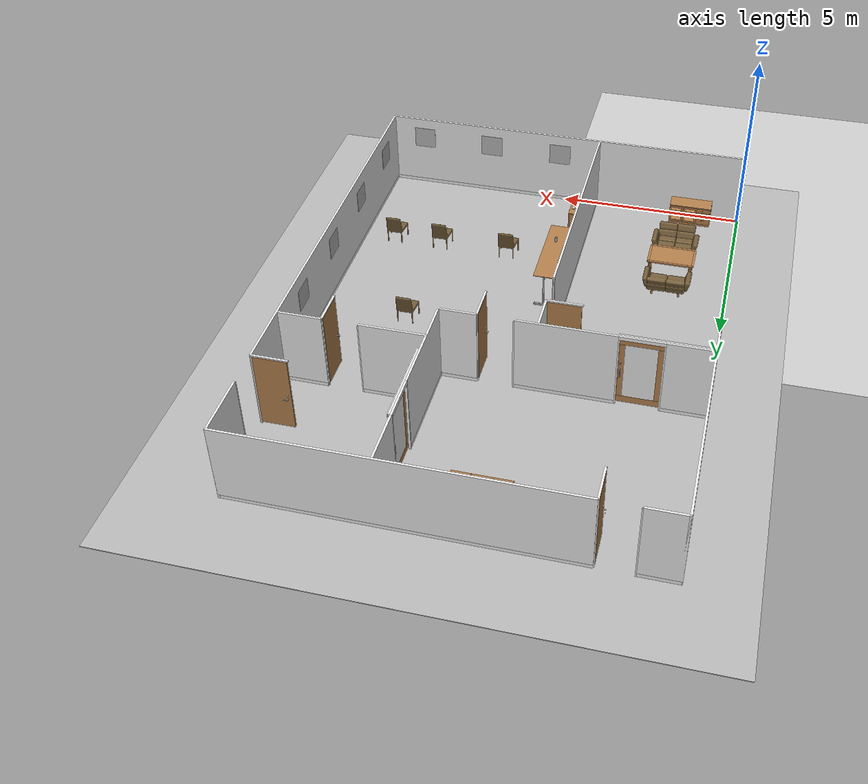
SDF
<sdf version="1.4">
 <world name="default">
  <scene>
   <ambient>0.5 0.5 0.5 1</ambient>
   <shadows>0</shadows>
   <grid>0</grid>
   <background>0.7 0.7 0.7 1</background>
  </scene>
  <physics type="ode">
   <real_time_update_rate>333.0</real_time_update_rate>
   <max_step_size>0.003</max_step_size>
   <ode><solver><type>quick</type><iters>100</iters></solver><constraints><cfm>0.0001</cfm></constraints></ode>
  </physics>
  <model name="gplane">
   <link name="body">
    <collision name="gplane_coll">
     <geometry><plane><normal>0 0 1</normal><size>10.075 13.18</size></plane></geometry>
     <surface><contact><ode><kp>1e+06</kp><kd>1</kd></ode></contact></surface>
     <laser_retro>2000</laser_retro>
    </collision>
    <visual name="gplane_vis">
     <geometry><plane><normal>0 0 1</normal><size>10.075 13.18</size></plane></geometry>
     <material>
      <script>
       <uri>model://base_materials/carpet/scripts</uri>
       <uri>model://base_materials/carpet/textures</uri>
       <name>carpet/carpet01</name>
      </script>
     </material>
     <cast_shadows>0</cast_shadows>
    </visual>
    <velocity_decay><linear>0</linear><angular>0</angular></velocity_decay>
   </link>
   <static>1</static>
  </model>
  <light name="inner_point_white1" type="point">
   <pose>4 5 4 0 0 0</pose>
   <diffuse>0.2 0.2 0.2 1</diffuse>
   <specular>0.1 0.1 0.1 1</specular>
   <attenuation>
    <range>20</range>
    <linear>0.1</linear>
    <constant>0.2</constant>
    <quadratic>0</quadratic>
   </attenuation>
   <cast_shadows>0</cast_shadows>
   <direction>0 0 -1</direction>
  </light>
  <light name="inner_point_white2" type="point">
   <pose>4 10 4 0 0 0</pose>
   <diffuse>0.2 0.2 0.2 1</diffuse>
   <specular>0.1 0.1 0.1 1</specular>
   <attenuation>
    <range>20</range>
    <linear>0.1</linear>
    <constant>0.2</constant>
    <quadratic>0</quadratic>
   </attenuation>
   <cast_shadows>0</cast_shadows>
   <direction>0 0 -1</direction>
  </light>
  <light name="inner_point_white3" type="point">
   <pose>8 5 4 0 0 0</pose>
   <diffuse>0.2 0.2 0.2 1</diffuse>
   <specular>0.1 0.1 0.1 1</specular>
   <attenuation>
    <range>20</range>
    <linear>0.1</linear>
    <constant>0.2</constant>
    <quadratic>0</quadratic>
   </attenuation>
   <cast_shadows>0</cast_shadows>
   <direction>0 0 -1</direction>
  </light>
  <light name="inner_point_white4" type="point">
   <pose>8 10 4 0 0 0</pose>
   <diffuse>0.2 0.2 0.2 1</diffuse>
   <specular>0.1 0.1 0.1 1</specular>
   <attenuation>
    <range>20</range>
    <linear>0.1</linear>
    <constant>0.2</constant>
    <quadratic>0</quadratic>
   </attenuation>
   <cast_shadows>0</cast_shadows>
   <direction>0 0 -1</direction>
  </light>
  <include><static>1</static><uri>model://full_inside_wall_qr_code</uri><name>inside_wall</name></include>
  <include><static>1</static><uri>model://full_outside_wall</uri><name>outside_wall</name></include>
  <include>
   <static>0</static>
   <pose>10.1025 10.8 0 0 0 1.5708</pose>
   <uri>model://openable_hinged_door_z_normally</uri>
   <name>door_x13y13</name>
  </include>
  <include>
   <static>1</static>
   <pose>10.1025 11.67 0 0 0 0</pose>
   <uri>model://hinged_door_stopper</uri>
   <name>door_stopper_x13y13</name>
  </include>
  <include>
   <static>0</static>
   <pose>1.8 13.2075 0 0 0 3.14</pose>
   <uri>model://openable_hinged_door_z_reversely</uri>
   <name>door_x02y16</name>
  </include>
  <include>
   <static>1</static>
   <pose>0.93 13.2075 0 0 0 1.5708</pose>
   <uri>model://hinged_door_stopper</uri>
   <name>door_stopper_x02y16</name>
  </include>
  <include>
   <static>0</static>
   <pose>4.075 7.33 0 0 0 1.5708</pose>
   <uri>model://openable_hinged_door_z_reversely</uri>
   <name>door_x05y09a</name>
  </include>
  <include>
   <static>1</static>
   <pose>4.075 6.425 0 0 0 0</pose>
   <uri>model://hinged_door_stopper</uri>
   <name>door_stopper_x05y09a</name>
  </include>
  <include>
   <static>0</static>
   <pose>1.65 8.23 0 0 0 -1.5708</pose>
   <uri>model://openable_sliding_door</uri>
   <name>door_x03y09</name>
  </include>
  <include>
   <static>0</static>
   <pose>5.5425 8.23 0 0 0 3.14</pose>
   <uri>model://openable_hinged_door_z_reversely</uri>
   <name>door_x08y09a</name>
  </include>
  <include>
   <static>1</static>
   <pose>4.675 8.23 0 0 0 1.5708</pose>
   <uri>model://hinged_door_stopper</uri>
   <name>door_stopper_x08y09a</name>
  </include>
  <include>
   <static>0</static>
   <pose>6.47 11.35 0 0 0 0</pose>
   <uri>model://openable_sliding_door</uri>
   <name>door_x08y13</name>
  </include>
  <include>
   <static>0</static>
   <pose>9.00 9.23 0 0 0 3.14</pose>
   <uri>model://openable_hinged_door_z_normally</uri>
   <name>door_x10y11</name>
  </include>
  <include>
   <static>1</static>
   <pose>8.13 9.23 0 0 0 1.5708</pose>
   <uri>model://hinged_door_stopper</uri>
   <name>door_stopper_x10y11</name>
  </include>
  <include><static>1</static><pose>4.6 1.2 0 0 0 0</pose><uri>model://wagon</uri><name>wagon</name></include>
  <include>
   <static>0</static>
   <pose>4.5 1.38 0.69 0 0 0</pose>
   <uri>model://nasal_inflammation_capsul</uri>
   <name>nasal_cupsul</name>
  </include>
  <include>
   <static>1</static>
   <pose>1.56 1.72 0 0 0 1.5708</pose>
   <uri>model://sofa-fix</uri>
   <name>sofa01</name>
  </include>
  <include>
   <static>1</static>
   <pose>1.56 3.56 0 0 0 -1.5708</pose>
   <uri>model://sofa-fix</uri>
   <name>sofa02</name>
  </include>
  <include>
   <static>1</static>
   <pose>1.56 2.58 0 0 0 1.5708</pose>
   <uri>model://kitchen_lowtable</uri>
   <name>kitchen_lowtable</name>
  </include>
  <include>
   <static>1</static>
   <pose>6.0184 3.0000 0.0000 0 0 -1.5708</pose>
   <uri>model://kitchen_chair</uri>
   <name>chair00</name>
  </include>
  <include>
   <static>1</static>
   <pose>7.9 3.0 0 0 0 -1.5708</pose>
   <uri>model://kitchen_chair</uri>
   <name>chair01</name>
  </include>
  <include>
   <static>1</static>
   <pose>9.2 3.0 0 0 0 -1.5708</pose>
   <uri>model://kitchen_chair</uri>
   <name>chair02</name>
  </include>
  <include>
   <static>1</static>
   <pose>7.9 6.3 0 0 0 -1.5708</pose>
   <uri>model://kitchen_chair</uri>
   <name>chair05</name>
  </include>
  <include>
   <static>0</static>
   <pose>1.9 0.47 0 0 0 1.5708</pose>
   <uri>model://openable_living_sideboard</uri>
   <name>living_sideboard</name>
  </include>
  <include>
   <static>0</static>
   <pose>0.997 0.274 0.505 0 0 0</pose>
   <uri>model://wallet</uri>
   <name>wallet</name>
  </include>
  <include>
   <static>1</static>
   <pose>4.6 4 0 0 0 0</pose>
   <uri>model://high_table</uri>
   <name>high_table01</name>
  </include>
  <include>
   <static>1</static>
   <pose>4.45 12.87 0 0 0 -1.5708</pose>
   <uri>model://high_shelf</uri>
   <name>high_shelf01</name>
  </include>
  <include>
   <static>1</static>
   <pose>4 12.87 0 0 0 -1.5708</pose>
   <uri>model://high_shelf</uri>
   <name>high_shelf02</name>
  </include>
  <include>
   <static>1</static>
   <pose>3.55 12.87 0 0 0 -1.5708</pose>
   <uri>model://high_shelf</uri>
   <name>high_shelf03</name>
  </include>
  <include>
   <static>0</static>
   <pose>4.5749 3.5577 1.1127 0 0 1</pose>
   <uri>model://hsr_orange</uri>
   <name>hsr_orange_02</name>
  </include>
  <include>
   <static>0</static>
   <pose>3.7459 12.9849 0.3794 0.0185 0.2284 -1.0179</pose>
   <uri>model://banana</uri>
   <name>banana_01</name>
  </include>
  <include>
   <static>0</static>
   <pose>3.8116 13.0323 1.2990 0.00 0.00 0.00</pose>
   <uri>model://pear</uri>
   <name>pear_01</name>
  </include>
  <include>
   <static>1</static>
   <pose>5.375 6.59 0 0 0 0</pose>
   <uri>model://lawn_garden</uri>
   <name>lawn_garden</name>
  </include>
 </world>
</sdf>

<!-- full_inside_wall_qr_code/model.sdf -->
<sdf version="1.4">
    <model name='full_inside_wall'>
      <link name='link'>
        <inertial>
          <mass>50</mass>
          <inertia>
            <ixx>1</ixx>
            <ixy>0</ixy>
            <ixz>0</ixz>
            <iyy>1</iyy>
            <iyz>0</iyz>
            <izz>1</izz>
          </inertia>
        </inertial>
        <visual name='x05y01_08_bottom_frame'>
          <pose>4.075 3.215 0.05 0 0 0</pose>
          <geometry>
            <box>
              <size>0.055 6.43 0.1</size>
            </box>
          </geometry>
          <material>
            <script>
              <uri>model://base_materials/color/scripts</uri>
              <name>hsr_color/white</name>
            </script>
          </material>
        </visual>
        <collision name='x05y01_08_collision_bottom_frame'>
          <pose>4.075 3.215 0.05 0 0 0</pose>
          <geometry>
            <box>
              <size>0.055 6.43 0.1</size>
            </box>
          </geometry>
          <max_contacts>10</max_contacts>
          <surface>
            <bounce/>
            <friction>
              <ode/>
            </friction>
            <contact>
              <ode/>
            </contact>
          </surface>
        </collision>
        <visual name='x05y01_08_wall'>
          <pose>4.075 3.215 1.095 0 0 0</pose>
          <geometry>
            <box>
              <size>0.055 6.43 1.99</size>
            </box>
          </geometry>
          <material>
            <script>
              <uri>model://base_materials/wall/scripts</uri>
              <uri>model://base_materials/wall/textures</uri>
              <name>wall/white_noise</name>
            </script>
          </material>
        </visual>
        <collision name='x05y01_08_collision_wall'>
          <pose>4.075 3.2150 1.095 0 0 0</pose>
          <geometry>
            <box>
              <size>0.055 6.43 1.99</size>
            </box>
          </geometry>
          <max_contacts>10</max_contacts>
          <surface>
            <bounce/>
            <friction>
              <ode/>
            </friction>
            <contact>
              <ode/>
            </contact>
          </surface>
        </collision>
        <visual name='x05y10_bottom_frame'>
          <pose>4.075 7.78 0.05 0 0 0</pose>
          <geometry>
            <box>
              <size>0.055 0.9 0.1</size>
            </box>
          </geometry>
          <material>
            <script>
              <uri>model://base_materials/color/scripts</uri>
              <name>hsr_color/white</name>
            </script>
          </material>
        </visual>
        <collision name='x05y10_collision_bottom_frame'>
          <pose>4.075 7.78 0.05 0 0 0</pose>
          <geometry>
            <box>
              <size>0.055 0.9 0.1</size>
            </box>
          </geometry>
          <max_contacts>10</max_contacts>
          <surface>
            <bounce/>
            <friction>
              <ode/>
            </friction>
            <contact>
              <ode/>
            </contact>
          </surface>
        </collision>
        <visual name='x05y10_wall'>
          <pose>4.075 7.78 1.095 0 0 0</pose>
          <geometry>
            <box>
              <size>0.055 0.9 1.99</size>
            </box>
          </geometry>
          <material>
            <script>
              <uri>model://base_materials/wall/scripts</uri>
              <uri>model://base_materials/wall/textures</uri>
              <name>wall/white_noise</name>
            </script>
          </material>
        </visual>
        <collision name='x05y10_collision_wall'>
          <pose>4.075 7.78 1.095 0 0 0</pose>
          <geometry>
            <box>
              <size>0.055 0.9 1.99</size>
            </box>
          </geometry>
          <max_contacts>10</max_contacts>
          <surface>
            <bounce/>
            <friction>
              <ode/>
            </friction>
            <contact>
              <ode/>
            </contact>
          </surface>
        </collision>

        <visual name='x01_02_y09_bottom_frame'>
          <pose>0.55 8.23 0.05 0 0 1.5708</pose>
          <geometry>
            <box>
              <size>0.055 1.1 0.1</size>
            </box>
          </geometry>
          <material>
            <script>
              <uri>model://base_materials/color/scripts</uri>
              <name>hsr_color/white</name>
            </script>
          </material>
        </visual>
        <collision name='x01_02_y09_collision_bottom_frame'>
          <pose>0.55 8.23 0.05 0 0 1.5708</pose>
          <geometry>
            <box>
              <size>0.055 1.1 0.1</size>
            </box>
          </geometry>
          <max_contacts>10</max_contacts>
          <surface>
            <bounce/>
            <friction>
              <ode/>
            </friction>
            <contact>
              <ode/>
            </contact>
          </surface>
        </collision>
        <visual name='x01_02_y09_wall'>
          <pose>0.55 8.23 1.095 0 0 1.5708</pose>
          <geometry>
            <box>
              <size>0.055 1.1 1.99</size>
            </box>
          </geometry>
          <material>
            <script>
              <uri>model://base_materials/wall/scripts</uri>
              <uri>model://base_materials/wall/textures</uri>
              <name>wall/white_noise</name>
            </script>
          </material>
        </visual>
        <collision name='x01_02_y09_collision_wall'>
          <pose>0.55 8.23 1.095 0 0 1.5708</pose>
          <geometry>
            <box>
              <size>0.055 1.1 1.99</size>
            </box>
          </geometry>
          <max_contacts>10</max_contacts>
          <surface>
            <bounce/>
            <friction>
              <ode/>
            </friction>
            <contact>
              <ode/>
            </contact>
          </surface>
        </collision>
        <visual name='x04_07_y09_bottom_frame'>
          <pose>3.42 8.23 0.05 0 0 1.5708</pose>
          <geometry>
            <box>
              <size>0.055 2.44 0.1</size>
            </box>
          </geometry>
          <material>
            <script>
              <uri>model://base_materials/color/scripts</uri>
              <name>hsr_color/white</name>
            </script>
          </material>
        </visual>
        <collision name='x04_07_y09_collision_bottom_frame'>
          <pose>3.42 8.23 0.05 0 0 1.5708</pose>
          <geometry>
            <box>
              <size>0.055 2.44 0.1</size>
            </box>
          </geometry>
          <max_contacts>10</max_contacts>
          <surface>
            <bounce/>
            <friction>
              <ode/>
            </friction>
            <contact>
              <ode/>
            </contact>
          </surface>
        </collision>
        <visual name='x04_07_y09_wall'>
          <pose>3.42 8.23 1.095 0 0 1.5708</pose>
          <geometry>
            <box>
              <size>0.055 2.44 1.99</size>
            </box>
          </geometry>
          <material>
            <script>
              <uri>model://base_materials/wall/scripts</uri>
              <uri>model://base_materials/wall/textures</uri>
              <name>wall/white_noise</name>
            </script>
          </material>
        </visual>
        <collision name='x04_07_y09_collision_wall'>
          <pose>3.42 8.23 1.095 0 0 1.5708</pose>
          <geometry>
            <box>
              <size>0.055 2.44 1.99</size>
            </box>
          </geometry>
          <max_contacts>10</max_contacts>
          <surface>
            <bounce/>
            <friction>
              <ode/>
            </friction>
            <contact>
              <ode/>
            </contact>
          </surface>
        </collision>
        <visual name='x08y10a_bottom_frame'>
          <pose>5.9925 8.23 0.05 0 0 1.5708</pose>
          <geometry>
            <box>
              <size>0.055 0.9 0.1</size>
            </box>
          </geometry>
          <material>
            <script>
              <uri>model://base_materials/color/scripts</uri>
              <name>hsr_color/white</name>
            </script>
          </material>
        </visual>
        <collision name='x08y10a_collision_bottom_frame'>
          <pose>5.9925 8.23 0.05 0 0 1.5708</pose>
          <geometry>
            <box>
              <size>0.055 0.9 0.1</size>
            </box>
          </geometry>
          <max_contacts>10</max_contacts>
          <surface>
            <bounce/>
            <friction>
              <ode/>
            </friction>
            <contact>
              <ode/>
            </contact>
          </surface>
        </collision>
        <visual name='x08y10a_wall'>
          <pose>5.9925 8.23 1.095 0 0 1.5708</pose>
          <geometry>
            <box>
              <size>0.055 0.9 1.99</size>
            </box>
          </geometry>
          <material>
            <script>
              <uri>model://base_materials/wall/scripts</uri>
              <uri>model://base_materials/wall/textures</uri>
              <name>wall/white_noise</name>
            </script>
          </material>
        </visual>
        <collision name='x08y10a_collision_wall'>
          <pose>5.9925 8.23 1.095 0 0 1.5708</pose>
          <geometry>
            <box>
              <size>0.055 0.9 1.99</size>
            </box>
          </geometry>
          <max_contacts>10</max_contacts>
          <surface>
            <bounce/>
            <friction>
              <ode/>
            </friction>
            <contact>
              <ode/>
            </contact>
          </surface>
        </collision>
        <visual name='x08y10a_bottom_frame'>
          <pose>5.9925 8.23 0.05 0 0 1.5708</pose>
          <geometry>
            <box>
              <size>0.055 0.9 0.1</size>
            </box>
          </geometry>
          <material>
            <script>
              <uri>model://base_materials/color/scripts</uri>
              <name>hsr_color/white</name>
            </script>
          </material>
        </visual>
        <collision name='x08y10a_collision_bottom_frame'>
          <pose>5.9925 8.23 0.05 0 0 1.5708</pose>
          <geometry>
            <box>
              <size>0.055 0.9 0.1</size>
            </box>
          </geometry>
          <max_contacts>10</max_contacts>
          <surface>
            <bounce/>
            <friction>
              <ode/>
            </friction>
            <contact>
              <ode/>
            </contact>
          </surface>
        </collision>
        <visual name='x08y10a_wall'>
          <pose>5.9925 8.23 1.095 0 0 1.5708</pose>
          <geometry>
            <box>
              <size>0.055 0.9 1.99</size>
            </box>
          </geometry>
          <material>
            <script>
              <uri>model://base_materials/wall/scripts</uri>
              <uri>model://base_materials/wall/textures</uri>
              <name>wall/white_noise</name>
            </script>
          </material>
        </visual>
        <collision name='x08y10a_collision_wall'>
          <pose>5.9925 8.23 1.095 0 0 1.5708</pose>
          <geometry>
            <box>
              <size>0.055 0.9 1.99</size>
            </box>
          </geometry>
          <max_contacts>10</max_contacts>
          <surface>
            <bounce/>
            <friction>
              <ode/>
            </friction>
            <contact>
              <ode/>
            </contact>
          </surface>
        </collision>
        <visual name='x08y14_15_bottom_frame'>
          <pose>6.47 12.54 0.05 0 0 0</pose>
          <geometry>
            <box>
              <size>0.055 1.28 0.1</size>
            </box>
          </geometry>
          <material>
            <script>
              <uri>model://base_materials/color/scripts</uri>
              <name>hsr_color/white</name>
            </script>
          </material>
        </visual>
        <collision name='x08y14_15_collision_bottom_frame'>
          <pose>6.47 12.54 0.05 0 0 0</pose>
          <geometry>
            <box>
              <size>0.055 1.28 0.1</size>
            </box>
          </geometry>
          <max_contacts>10</max_contacts>
          <surface>
            <bounce/>
            <friction>
              <ode/>
            </friction>
            <contact>
              <ode/>
            </contact>
          </surface>
        </collision>
        <visual name='x08y14_15_wall'>
          <pose>6.47 12.54 1.095 0 0 0</pose>
          <geometry>
            <box>
              <size>0.055 1.28 1.99</size>
            </box>
          </geometry>
          <material>
            <script>
              <uri>model://base_materials/wall/scripts</uri>
              <uri>model://base_materials/wall/textures</uri>
              <name>wall/white_noise</name>
            </script>
          </material>
        </visual>
        <collision name='x08y14_15_collision_wall'>
          <pose>6.47 12.54 1.095 0 0 0</pose>
          <geometry>
            <box>
              <size>0.055 1.28 1.99</size>
            </box>
          </geometry>
          <max_contacts>10</max_contacts>
          <surface>
            <bounce/>
            <friction>
              <ode/>
            </friction>
            <contact>
              <ode/>
            </contact>
          </surface>
        </collision>
        <visual name='x08y10b_12_bottom_frame'>
          <pose>6.47 9.52875 0.05 0 0 0</pose>
          <geometry>
            <box>
              <size>0.055 2.5425 0.1</size>
            </box>
          </geometry>
          <material>
            <script>
              <uri>model://base_materials/color/scripts</uri>
              <name>hsr_color/white</name>
            </script>
          </material>
        </visual>
        <collision name='x08y10b_12_collision_bottom_frame'>
          <pose>6.47 9.52875 0.05 0 0 0</pose>
          <geometry>
            <box>
              <size>0.055 2.5425 0.1</size>
            </box>
          </geometry>
          <max_contacts>10</max_contacts>
          <surface>
            <bounce/>
            <friction>
              <ode/>
            </friction>
            <contact>
              <ode/>
            </contact>
          </surface>
        </collision>
        <visual name='x08y10b_12_wall'>
          <pose>6.47 9.52875 1.095 0 0 0</pose>
          <geometry>
            <box>
              <size>0.055 2.5425 1.99</size>
            </box>
          </geometry>
          <material>
            <script>
              <uri>model://base_materials/wall/scripts</uri>
              <uri>model://base_materials/wall/textures</uri>
              <name>wall/white_noise</name>
            </script>
          </material>
        </visual>
        <collision name='x08y10b_12_collision_wall'>
          <pose>6.47 9.52875 1.095 0 0 0</pose>
          <geometry>
            <box>
              <size>0.055 2.5425 1.99</size>
            </box>
          </geometry>
          <max_contacts>10</max_contacts>
          <surface>
            <bounce/>
            <friction>
              <ode/>
            </friction>
            <contact>
              <ode/>
            </contact>
          </surface>
        </collision>
        <visual name='x08_09y11b_bottom_frame'>
          <pose>7.284 9.23 0.05 0 0 1.5708</pose>
          <geometry>
            <box>
              <size>0.055 1.632 0.1</size>
            </box>
          </geometry>
          <material>
            <script>
              <uri>model://base_materials/color/scripts</uri>
              <name>hsr_color/white</name>
            </script>
          </material>
        </visual>
        <collision name='x08_09y11b_collision_bottom_frame'>
          <pose>7.284 9.23 0.05 0 0 1.5708</pose>
          <geometry>
            <box>
              <size>0.055 1.632 0.1</size>
            </box>
          </geometry>
          <max_contacts>10</max_contacts>
          <surface>
            <bounce/>
            <friction>
              <ode/>
            </friction>
            <contact>
              <ode/>
            </contact>
          </surface>
        </collision>
        <visual name='x08_09y11b_wall'>
          <pose>7.284 9.23 1.095 0 0 1.5708</pose>
          <geometry>
            <box>
              <size>0.055 1.632 1.99</size>
            </box>
          </geometry>
          <material>
            <script>
              <uri>model://base_materials/wall/scripts</uri>
              <uri>model://base_materials/wall/textures</uri>
              <name>wall/white_noise</name>
            </script>
          </material>
        </visual>
        <collision name='x08_09y11b_collision_wall'>
          <pose>7.284 9.23 1.095 0 0 1.5708</pose>
          <geometry>
            <box>
              <size>0.055 1.632 1.99</size>
            </box>
          </geometry>
          <max_contacts>10</max_contacts>
          <surface>
            <bounce/>
            <friction>
              <ode/>
            </friction>
            <contact>
              <ode/>
            </contact>
          </surface>
        </collision>

        <visual name='x11_12y11_bottom_frame'>
          <pose>9.5375 9.23 0.05 0 0 1.5708</pose>
          <geometry>
            <box>
              <size>0.055 1.075 0.1</size>
            </box>
          </geometry>
          <material>
            <script>
              <uri>model://base_materials/color/scripts</uri>
              <name>hsr_color/white</name>
            </script>
          </material>
        </visual>
        <collision name='x11_12y11_collision_bottom_frame'>
          <pose>9.5375 9.23 0.05 0 0 1.5708</pose>
          <geometry>
            <box>
              <size>0.055 1.075 0.1</size>
            </box>
          </geometry>
          <max_contacts>10</max_contacts>
          <surface>
            <bounce/>
            <friction>
              <ode/>
            </friction>
            <contact>
              <ode/>
            </contact>
          </surface>
        </collision>
        <visual name='x11_12y11_wall'>
          <pose>9.5375 9.23 1.095 0 0 1.5708</pose>
          <geometry>
            <box>
              <size>0.055 1.075 1.99</size>
            </box>
          </geometry>
          <material>
            <script>
              <uri>model://base_materials/wall/scripts</uri>
              <uri>model://base_materials/wall/textures</uri>
              <name>wall/white_noise</name>
            </script>
          </material>
        </visual>
        <collision name='x11_12y11_collision_wall'>
          <pose>9.5375 9.23 1.095 0 0 1.5708</pose>
          <geometry>
            <box>
              <size>0.055 1.075 1.99</size>
            </box>
          </geometry>
          <max_contacts>10</max_contacts>
          <surface>
            <bounce/>
            <friction>
              <ode/>
            </friction>
            <contact>
              <ode/>
            </contact>
          </surface>
        </collision>

        <visual name='qr_code01'>
          <pose>4.11 1.0 1.5 0 0 0</pose>
          <geometry>
            <box>
              <size>0.01 0.6 0.6</size>
            </box>
          </geometry>
          <material>
            <script>
              <uri>model://qr_codes/scripts</uri>
              <uri>model://qr_codes/textures</uri>
              <name>qr_codes/ezekiel01</name>
            </script>
          </material>
        </visual>
        <visual name='qr_code02'>
          <pose>4.11 3.0 1.5 0 0 0</pose>
          <geometry>
            <box>
              <size>0.01 0.6 0.6</size>
            </box>
          </geometry>
          <material>
            <script>
              <uri>model://qr_codes/scripts</uri>
              <uri>model://qr_codes/textures</uri>
              <name>qr_codes/ezekiel02</name>
            </script>
          </material>
        </visual>
        <visual name='qr_code03'>
          <pose>4.11 5.0 1.5 0 0 0</pose>
          <geometry>
            <box>
              <size>0.01 0.6 0.6</size>
            </box>
          </geometry>
          <material>
            <script>
              <uri>model://qr_codes/scripts</uri>
              <uri>model://qr_codes/textures</uri>
              <name>qr_codes/ezekiel03</name>
            </script>
          </material>
        </visual>
        <visual name='qr_code04'>
          <pose>4.11 7.7 1.5 0 0 0</pose>
          <geometry>
            <box>
              <size>0.01 0.6 0.6</size>
            </box>
          </geometry>
          <material>
            <script>
              <uri>model://qr_codes/scripts</uri>
              <uri>model://qr_codes/textures</uri>
              <name>qr_codes/ezekiel04</name>
            </script>
          </material>
        </visual>
        <visual name='qr_code05'>
          <pose>6.05 8.18 1.5 0 0 0</pose>
          <geometry>
            <box>
              <size>0.6 0.01 0.6</size>
            </box>
          </geometry>
          <material>
            <script>
              <uri>model://qr_codes/scripts</uri>
              <uri>model://qr_codes/textures</uri>
              <name>qr_codes/ezekiel05</name>
            </script>
          </material>
        </visual>
        <visual name='qr_code06'>
          <pose>6.52 8.62 1.5 0 0 0</pose>
          <geometry>
            <box>
              <size>0.01 0.6 0.6</size>
            </box>
          </geometry>
          <material>
            <script>
              <uri>model://qr_codes/scripts</uri>
              <uri>model://qr_codes/textures</uri>
              <name>qr_codes/ezekiel06</name>
            </script>
          </material>
        </visual>
        <visual name='qr_code07'>
          <pose>7.51 9.18 1.5 0 0 0</pose>
          <geometry>
            <box>
              <size>0.6 0.01 0.6</size>
            </box>
          </geometry>
          <material>
            <script>
              <uri>model://qr_codes/scripts</uri>
              <uri>model://qr_codes/textures</uri>
              <name>qr_codes/ezekiel07</name>
            </script>
          </material>
        </visual>
        <visual name='qr_code08'>
          <pose>9.55 9.18 1.5 0 0 0</pose>
          <geometry>
            <box>
              <size>0.6 0.01 0.6</size>
            </box>
          </geometry>
          <material>
            <script>
              <uri>model://qr_codes/scripts</uri>
              <uri>model://qr_codes/textures</uri>
              <name>qr_codes/ezekiel08</name>
            </script>
          </material>
        </visual>
        <visual name='qr_code09'>
          <pose>10.03 1.2 1.5 0 0 0</pose>
          <geometry>
            <box>
              <size>0.01 0.6 0.6</size>
            </box>
          </geometry>
          <material>
            <script>
              <uri>model://qr_codes/scripts</uri>
              <uri>model://qr_codes/textures</uri>
              <name>qr_codes/ezekiel09</name>
            </script>
          </material>
        </visual>
        <visual name='qr_code10'>
          <pose>10.03 3.4 1.5 0 0 0</pose>
          <geometry>
            <box>
              <size>0.01 0.6 0.6</size>
            </box>
          </geometry>
          <material>
            <script>
              <uri>model://qr_codes/scripts</uri>
              <uri>model://qr_codes/textures</uri>
              <name>qr_codes/ezekiel10</name>
            </script>
          </material>
        </visual>
        <visual name='qr_code11'>
          <pose>10.03 5.6 1.5 0 0 0</pose>
          <geometry>
            <box>
              <size>0.01 0.6 0.6</size>
            </box>
          </geometry>
          <material>
            <script>
              <uri>model://qr_codes/scripts</uri>
              <uri>model://qr_codes/textures</uri>
              <name>qr_codes/ezekiel11</name>
            </script>
          </material>
        </visual>
        <visual name='qr_code12'>
          <pose>10.03 7.8 1.5 0 0 0</pose>
          <geometry>
            <box>
              <size>0.01 0.6 0.6</size>
            </box>
          </geometry>
          <material>
            <script>
              <uri>model://qr_codes/scripts</uri>
              <uri>model://qr_codes/textures</uri>
              <name>qr_codes/ezekiel12</name>
            </script>
          </material>
        </visual>
        <visual name='qr_code13'>
          <pose>5.2 0.0 1.5 0 0 0</pose>
          <geometry>
            <box>
              <size>0.6 0.01 0.6</size>
            </box>
          </geometry>
          <material>
            <script>
              <uri>model://qr_codes/scripts</uri>
              <uri>model://qr_codes/textures</uri>
              <name>qr_codes/ezekiel13</name>
            </script>
          </material>
        </visual>
        <visual name='qr_code14'>
          <pose>7.2 0.0 1.5 0 0 0</pose>
          <geometry>
            <box>
              <size>0.6 0.01 0.6</size>
            </box>
          </geometry>
          <material>
            <script>
              <uri>model://qr_codes/scripts</uri>
              <uri>model://qr_codes/textures</uri>
              <name>qr_codes/ezekiel14</name>
            </script>
          </material>
        </visual>
        <visual name='qr_code15'>
          <pose>9.2 0.0 1.5 0 0 0</pose>
          <geometry>
            <box>
              <size>0.6 0.01 0.6</size>
            </box>
          </geometry>
          <material>
            <script>
              <uri>model://qr_codes/scripts</uri>
              <uri>model://qr_codes/textures</uri>
              <name>qr_codes/ezekiel15</name>
            </script>
          </material>
        </visual>

        <velocity_decay>
          <linear>0</linear>
          <angular>0</angular>
        </velocity_decay>
        <self_collide>0</self_collide>
        <kinematic>0</kinematic>
        <gravity>1</gravity>
      </link>
      <static>1</static>
    </model>
</sdf>

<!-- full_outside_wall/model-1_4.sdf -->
<sdf version="1.4">
    <model name='full_outside_wall'>
      <link name='link'>
        <inertial>
          <mass>50</mass>
          <inertia>
            <ixx>1</ixx>
            <ixy>0</ixy>
            <ixz>0</ixz>
            <iyy>1</iyy>
            <iyz>0</iyz>
            <izz>1</izz>
          </inertia>
        </inertial>
        <visual name='x00_13y00_bottom_frame'>
          <pose>5.0375 -0.0275 0.05 0 0 0</pose>
          <geometry>
            <box>
              <size>10.185 0.055 0.1</size>
            </box>
          </geometry>
          <material>
            <script>
              <uri>model://base_materials/color/scripts</uri>
              <name>hsr_color/white</name>
            </script>
          </material>
        </visual>
        <collision name='x00_13y00_collision_bottom_frame'>
          <pose>5.0375 -0.0275 0.05 0 0 0</pose>
          <geometry>
            <box>
              <size>10.185 0.055 0.1</size>
            </box>
          </geometry>
          <max_contacts>10</max_contacts>
          <surface>
            <bounce/>
            <friction>
              <ode/>
            </friction>
            <contact>
              <ode/>
            </contact>
          </surface>
        </collision>
        <visual name='wall_x00_13y00'>
          <pose>5.0375 -0.0275 1.095 0 0 0</pose>
          <geometry>
            <box>
              <size>10.185 0.055 1.99</size>
            </box>
          </geometry>
          <material>
            <script>
              <uri>model://base_materials/wall/scripts</uri>
              <uri>model://base_materials/wall/textures</uri>
              <name>wall/white_noise</name>
            </script>
          </material>
        </visual>
        <collision name='wall_x00_13y00'>
          <pose>5.0375 -0.002 1.095 0 0 0</pose>
          <geometry>
            <box>
              <size>10.08 0.055 1.99</size>
            </box>
          </geometry>
          <max_contacts>10</max_contacts>
          <surface>
            <bounce/>
            <friction>
              <ode/>
            </friction>
            <contact>
              <ode/>
            </contact>
          </surface>
        </collision>
        <visual name='x00y00_15_bottom_frame'>
          <pose>-0.0275 6.59 0.05 0 0 0</pose>
          <geometry>
            <box>
              <size>0.055 13.29 0.1</size>
            </box>
          </geometry>
          <material>
            <script>
              <uri>model://base_materials/color/scripts</uri>
              <name>hsr_color/white</name>
            </script>
          </material>
        </visual>
        <collision name='x00y00_15_collision_bottom_frame'>
          <pose>-0.0275 6.59 0.05 0 0 0</pose>
          <geometry>
            <box>
              <size>0.055 13.29 0.1</size>
            </box>
          </geometry>
          <max_contacts>10</max_contacts>
          <surface>
            <bounce/>
            <friction>
              <ode/>
            </friction>
            <contact>
              <ode/>
            </contact>
          </surface>
        </collision>
        <visual name='wall_x00y00_15'>
          <pose>-0.0275 6.59 1.095 0 0 0</pose>
          <geometry>
            <box>
              <size>0.055 13.29 1.99</size>
            </box>
          </geometry>
          <material>
            <script>
              <uri>model://base_materials/wall/scripts</uri>
              <uri>model://base_materials/wall/textures</uri>
              <name>wall/white_noise</name>
            </script>
          </material>
        </visual>
        <collision name='wall_x00y00_x00y15'>
          <pose>-0.002 6.59 1.095 0 0 0</pose>
          <geometry>
            <box>
              <size>0.002 13.29 1.99</size>
            </box>
          </geometry>
          <max_contacts>10</max_contacts>
          <surface>
            <bounce/>
            <friction>
              <ode/>
            </friction>
            <contact>
              <ode/>
            </contact>
          </surface>
        </collision>
        <visual name='x13y00_12_bottom_frame'>
          <pose>10.1025 5.3725 0.05 0 0 0</pose>
          <geometry>
            <box>
              <size>0.055 10.855 0.1</size>
            </box>
          </geometry>
          <material>
            <script>
              <uri>model://base_materials/color/scripts</uri>
              <name>hsr_color/white</name>
            </script>
          </material>
        </visual>
        <collision name='x13y00_12_collision_bottom_frame'>
          <pose>10.1025 5.3725 0.05 0 0 0</pose>
          <geometry>
            <box>
              <size>0.055 10.855 0.1</size>
            </box>
          </geometry>
          <max_contacts>10</max_contacts>
          <surface>
            <bounce/>
            <friction>
              <ode/>
            </friction>
            <contact>
              <ode/>
            </contact>
          </surface>
        </collision>
        <visual name='wall_x13y00_12'>
          <pose>10.1025 5.3725 1.095 0 0 0</pose>
          <geometry>
            <box>
              <size>0.055 10.855 1.99</size>
            </box>
          </geometry>
          <material>
            <script>
              <uri>model://base_materials/wall/scripts</uri>
              <uri>model://base_materials/wall/textures</uri>
              <name>wall/white_noise</name>
            </script>
          </material>
        </visual>
        <collision name='wall_x13y00_12'>
          <pose>10.1025 5.3725 1.095 0 0 0</pose>
          <geometry>
            <box>
              <size>0.055 10.855 1.99</size>
            </box>
          </geometry>
          <max_contacts>10</max_contacts>
          <surface>
            <bounce/>
            <friction>
              <ode/>
            </friction>
            <contact>
              <ode/>
            </contact>
          </surface>
        </collision>
        <visual name='x13y14_16_bottom_frame'>
          <pose>10.1025 12.4675 0.05 0 0 0</pose>
          <geometry>
            <box>
              <size>0.055 1.535 0.1</size>
            </box>
          </geometry>
          <material>
            <script>
              <uri>model://base_materials/color/scripts</uri>
              <name>hsr_color/white</name>
            </script>
          </material>
        </visual>
        <collision name='x13y14_16_collision_bottom_frame'>
          <pose>10.1025 12.4675 0.05 0 0 0</pose>
          <geometry>
            <box>
              <size>0.055 1.535 0.1</size>
            </box>
          </geometry>
          <max_contacts>10</max_contacts>
          <surface>
            <bounce/>
            <friction>
              <ode/>
            </friction>
            <contact>
              <ode/>
            </contact>
          </surface>
        </collision>
        <visual name='wall_x13y14_x13y16'>
          <pose>10.1025 12.4675 1.095 0 0 0</pose>
          <geometry>
            <box>
              <size>0.055 1.535 1.99</size>
            </box>
          </geometry>
          <material>
            <script>
              <uri>model://base_materials/wall/scripts</uri>
              <uri>model://base_materials/wall/textures</uri>
              <name>wall/white_noise</name>
            </script>
          </material>
        </visual>
        <collision name='wall_x13y14_x13y16'>
          <pose>10.1025 12.4675 1.095 0 0 0</pose>
          <geometry>
            <box>
              <size>0.055 1.535 1.99</size>
            </box>
          </geometry>
          <max_contacts>10</max_contacts>
          <surface>
            <bounce/>
            <friction>
              <ode/>
            </friction>
            <contact>
              <ode/>
            </contact>
          </surface>
        </collision>
        <visual name='x00_01y16_bottom_frame'>
          <pose>0.4225 13.2075 0.05 0 0 0</pose>
          <geometry>
            <box>
              <size>0.955 0.055 0.1</size>
            </box>
          </geometry>
          <material>
            <script>
              <uri>model://base_materials/color/scripts</uri>
              <name>hsr_color/white</name>
            </script>
          </material>
        </visual>
        <collision name='x00_01y16_collision_bottom_frame'>
          <pose>0.4225 13.2075 0.05 0 0 0</pose>
          <geometry>
            <box>
              <size>0.955 0.055 0.1</size>
            </box>
          </geometry>
          <max_contacts>10</max_contacts>
          <surface>
            <bounce/>
            <friction>
              <ode/>
            </friction>
            <contact>
              <ode/>
            </contact>
          </surface>
        </collision>
        <visual name='wall_x00_01y16'>
          <pose>0.4225 13.2075 1.095 0 0 0</pose>
          <geometry>
            <box>
              <size>0.955 0.055 1.99</size>
            </box>
          </geometry>
          <material>
            <script>
              <uri>model://base_materials/wall/scripts</uri>
              <uri>model://base_materials/wall/textures</uri>
              <name>wall/white_noise</name>
            </script>
          </material>
        </visual>
        <collision name='wall_x00_x01y16'>
          <pose>0.4225 13.2075 1.095 0 0 0</pose>
          <geometry>
            <box>
              <size>0.955 0.055 1.99</size>
            </box>
          </geometry>
          <max_contacts>10</max_contacts>
          <surface>
            <bounce/>
            <friction>
              <ode/>
            </friction>
            <contact>
              <ode/>
            </contact>
          </surface>
        </collision>

        <visual name='x03_13y16_bottom_frame'>
          <pose>5.965 13.2075 0.05 0 0 0</pose>
          <geometry>
            <box>
              <size>8.330 0.05 0.1</size>
            </box>
          </geometry>
          <material>
            <script>
              <uri>model://base_materials/color/scripts</uri>
              <name>hsr_color/white</name>
            </script>
          </material>
        </visual>
        <collision name='x03_13y16_collision_bottom_frame'>
          <pose>5.965 13.2075 0.05 0 0 0</pose>
          <geometry>
            <box>
              <size>8.330 0.05 0.1</size>
            </box>
          </geometry>
          <max_contacts>10</max_contacts>
          <surface>
            <bounce/>
            <friction>
              <ode/>
            </friction>
            <contact>
              <ode/>
            </contact>
          </surface>
        </collision>
        <visual name='wall_x03_13y16'>
          <pose>5.965 13.2075 1.095 0 0 0</pose>
          <geometry>
            <box>
              <size>8.330 0.055 1.99</size>
            </box>
          </geometry>
          <material>
            <script>
              <uri>model://base_materials/wall/scripts</uri>
              <uri>model://base_materials/wall/textures</uri>
              <name>wall/white_noise</name>
            </script>
          </material>
        </visual>
        <collision name='wall_x03_13y16'>
          <pose>5.965 13.2075 1.095 0 0 0</pose>
          <geometry>
            <box>
              <size>8.330 0.055 1.99</size>
            </box>
          </geometry>
          <max_contacts>10</max_contacts>
          <surface>
            <bounce/>
            <friction>
              <ode/>
            </friction>
            <contact>
              <ode/>
            </contact>
          </surface>
        </collision>

        <velocity_decay>
          <linear>0</linear>
          <angular>0</angular>
        </velocity_decay>
        <self_collide>0</self_collide>
        <kinematic>0</kinematic>
        <gravity>1</gravity>
      </link>
      <static>1</static>
    </model>
</sdf>

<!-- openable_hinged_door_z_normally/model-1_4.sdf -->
<sdf version="1.4">
    <model name='openable_hinged_door_z_normally'>
      <joint name="frame_to_world_joint" type="revolute">
          <parent>world</parent>
          <child>frame</child>
          <!-- Mimic fixed joint  -->
          <pose>0 -0.45 0 0 0 0</pose>
          <axis>
              <xyz>0 0 1</xyz>
              <limit>
                  <lower>0</lower>
                  <upper>0</upper>
              </limit>
          </axis>
      </joint>
      <link name='frame'>
        <pose>0 0.45 0 0 0 0</pose>
        <visual name='left_frame'>
          <pose>0 -0.4325 1.025 0 0 0</pose>
          <geometry>
            <box>
              <size>0.055 0.035 2.050</size>
            </box>
          </geometry>
          <material>
            <script>
              <uri>model://base_materials/color/scripts</uri>
              <name>hsr_color/white</name>
            </script>
          </material>
        </visual>
        <collision name='collision_left_frame'>
          <pose>0 -0.4325 1.025 0 0 0</pose>
          <geometry>
            <box>
              <size>0.055 0.035 2.050</size>
            </box>
          </geometry>
          <max_contacts>10</max_contacts>
          <surface>
            <bounce/>
            <friction>
              <ode/>
            </friction>
            <contact>
              <ode/>
            </contact>
          </surface>
        </collision>
        <visual name='top_frame'>
          <pose>0 0 2.070 0 0 0</pose>
          <geometry>
            <box>
              <size>0.055 0.9 0.04</size>
            </box>
          </geometry>
          <material>
            <script>
              <uri>model://base_materials/color/scripts</uri>
              <name>hsr_color/white</name>
            </script>
          </material>
        </visual>
        <collision name='collision_top_frame'>
          <pose>0 0 2.070 0 0 0</pose>
          <geometry>
            <box>
              <size>0.055 0.9 0.04</size>
            </box>
          </geometry>
          <max_contacts>10</max_contacts>
          <surface>
            <bounce/>
            <friction>
              <ode/>
            </friction>
            <contact>
              <ode/>
            </contact>
          </surface>
        </collision>
        <velocity_decay>
          <linear>0</linear>
          <angular>0</angular>
        </velocity_decay>
        <self_collide>0</self_collide>
        <kinematic>0</kinematic>
        <gravity>1</gravity>
      </link>
      <link name='door'>
        <pose>0 0 0 0 0 0</pose>
        <inertial>
          <mass>50</mass>
          <inertia>
            <ixx>14.2</ixx>
            <ixy>0</ixy>
            <ixz>0</ixz>
            <iyy>17.2</iyy>
            <iyz>0</iyz>
            <izz>3.0</izz>
          </inertia>
        </inertial>
        <visual name='door'>
          <pose>0 0.45 1.050 0 0 0</pose>
          <geometry>
            <box>
              <size>0.055 0.830 2.0</size>
            </box>
          </geometry>
          <material>
            <script>
              <uri>model://base_materials/wood/scripts/wood.material</uri>
              <name>base_materials/wood</name>
            </script>
          </material>
        </visual>
        <collision name='collision_door'>
          <pose>0 0.45 1.050 0 0 0</pose>
          <geometry>
            <box>
              <size>0.055 0.830 2.0</size>
            </box>
          </geometry>
          <max_contacts>10</max_contacts>
          <surface>
            <bounce/>
            <friction>
              <ode/>
            </friction>
            <contact>
              <ode/>
            </contact>
          </surface>
        </collision>
        <visual name='handle_lock1'>
          <pose>0 0.785 1.03 0 0 0</pose>
          <geometry>
            <box>
              <size>0.075 0.005 0.04</size>
            </box>
          </geometry>
          <material>
            <script>
              <uri>model://base_materials/color/scripts</uri>
              <name>hsr_color/white</name>
            </script>
          </material>
        </visual>
        <visual name='handle_lock2'>
          <pose>0 0.785 1.03 0 1.5708 0</pose>
          <geometry>
            <cylinder>
              <radius>0.025</radius>
              <length>0.065</length>
            </cylinder>
          </geometry>
          <material>
            <script>
              <uri>model://base_materials/color/scripts</uri>
              <name>hsr_color/white</name>
            </script>
          </material>
        </visual>
        <velocity_decay>
          <linear>0</linear>
          <angular>0</angular>
        </velocity_decay>
        <self_collide>0</self_collide>
        <kinematic>0</kinematic>
        <gravity>1</gravity>
      </link>
      <link name='handles'>
        <pose>0.0 0.8 0.93 0 3.14 1.57</pose>
        <visual name="handle1_visual">
          <pose>0.015 0 0 -1.57 0 0</pose>
          <geometry>
            <mesh>
              <uri>model://openable_hinged_door_z_normally/meshes/door_handle_small.dae</uri>
            </mesh>
          </geometry>
        </visual>
        <collision name="handle1_collision">
          <pose>0.015 0 0 -1.57 0 0</pose>
          <geometry>
            <mesh>
              <uri>model://openable_hinged_door_z_normally/meshes/door_handle_small.dae</uri>
            </mesh>
          </geometry>
        </collision>
      </link>
      <joint name="handle" type="revolute">
        <parent>door</parent>
        <child>handles</child>
        <pose>0.013 0 0 0 0 0</pose>
        <axis>
          <xyz>1 0 0</xyz>
          <limit>
            <lower>0</lower>
            <upper>0.52</upper>
          </limit>
          <dynamics>
            <damping>0.1</damping>
            <spring_stiffness>0.3</spring_stiffness>
          </dynamics>
        </axis>
        <physics>
          <ode>
            <cfm_damping>1</cfm_damping>
          </ode>
        </physics>
      </joint>
      <joint name="hinge" type="revolute">
        <parent>frame</parent>
        <child>door</child>
        <axis>
          <xyz>0 0 1</xyz>
          <limit>
            <lower>0</lower>
            <upper>1.58</upper>
            <effort></effort>
            <velocity></velocity>
          </limit>
          <dynamics>
            <damping>1.0</damping>
            <friction>1.0</friction>
          </dynamics>
        </axis>
        <physics>
          <ode>
            <cfm_damping>1</cfm_damping>
          </ode>
        </physics>
      </joint>
      <static>0</static>
    </model>
</sdf>

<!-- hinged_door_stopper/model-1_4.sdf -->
<sdf version="1.4">
<model name='hinged_door_stopper'>
  <link name='door_frame'>
    <pose>0 0 0 0 0 0</pose>
    <visual name='stopper'>
      <pose>0.0225 0.0175 1.025 0 0 0</pose>
      <geometry>
        <box>
          <size>0.01 0.035 2.050</size>
        </box>
      </geometry>
      <material>
        <script>
          <uri>model://base_materials/color/scripts</uri>
          <name>hsr_color/white</name>
        </script>
      </material>
    </visual>
    <collision name='collision_frame_1'>
      <pose>0.0225 0.0175 1.025 0 0 0</pose>
      <geometry>
        <box>
          <size>0.01 0.035 2.050</size>
        </box>
      </geometry>
      <max_contacts>10</max_contacts>
      <surface/>
    </collision>
    <visual name='frame_2'>
      <pose>-0.0225 0.0175 1.025 0 0 0</pose>
      <geometry>
        <box>
          <size>0.01 0.035 2.050</size>
        </box>
      </geometry>
      <material>
        <script>
          <uri>model://base_materials/color/scripts</uri>
          <name>hsr_color/white</name>
        </script>
      </material>
    </visual>
    <collision name='collision_frame_2'>
      <pose>-0.0225 0.0175 1.025 0 0 0</pose>
      <geometry>
        <box>
          <size>0.01 0.035 2.050</size>
        </box>
      </geometry>
      <max_contacts>10</max_contacts>
      <surface/>
    </collision>
  </link>
  <static>0</static>
</model>
</sdf>

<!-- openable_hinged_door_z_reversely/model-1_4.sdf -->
<sdf version="1.4">
    <model name='openable_hinged_door_z_reversely'>
      <joint name="frame_to_world_joint" type="revolute">
          <parent>world</parent>
          <child>frame</child>
          <!-- Mimic fixed joint  -->
          <pose>0 -0.45 0 0 0 0</pose>
          <axis>
              <xyz>0 0 1</xyz>
              <limit>
                  <lower>0</lower>
                  <upper>0</upper>
              </limit>
          </axis>
      </joint>
      <link name='frame'>
        <pose>0 0.45 0 0 0 0</pose>
        <visual name='left_frame'>
          <pose>0 -0.4325 1.025 0 0 0</pose>
          <geometry>
            <box>
              <size>0.055 0.035 2.050</size>
            </box>
          </geometry>
          <material>
            <script>
              <uri>model://base_materials/color/scripts</uri>
              <name>hsr_color/white</name>
            </script>
          </material>
        </visual>
        <collision name='collision_left_frame'>
          <pose>0 -0.4325 1.025 0 0 0</pose>
          <geometry>
            <box>
              <size>0.055 0.035 2.050</size>
            </box>
          </geometry>
          <max_contacts>10</max_contacts>
          <surface>
            <bounce/>
            <friction>
              <ode/>
            </friction>
            <contact>
              <ode/>
            </contact>
          </surface>
        </collision>
        <visual name='top_frame'>
          <pose>0 0 2.070 0 0 0</pose>
          <geometry>
            <box>
              <size>0.055 0.9 0.04</size>
            </box>
          </geometry>
          <material>
            <script>
              <uri>model://base_materials/color/scripts</uri>
              <name>hsr_color/white</name>
            </script>
          </material>
        </visual>
        <collision name='collision_top_frame'>
          <pose>0 0 2.070 0 0 0</pose>
          <geometry>
            <box>
              <size>0.055 0.9 0.04</size>
            </box>
          </geometry>
          <max_contacts>10</max_contacts>
          <surface>
            <bounce/>
            <friction>
              <ode/>
            </friction>
            <contact>
              <ode/>
            </contact>
          </surface>
        </collision>
        <velocity_decay>
          <linear>0</linear>
          <angular>0</angular>
        </velocity_decay>
        <self_collide>0</self_collide>
        <kinematic>0</kinematic>
        <gravity>1</gravity>
      </link>
      <link name='door'>
        <pose>0 0 0 0 0 0</pose>
        <inertial>
          <mass>50</mass>
          <inertia>
            <ixx>14.2</ixx>
            <ixy>0</ixy>
            <ixz>0</ixz>
            <iyy>17.2</iyy>
            <iyz>0</iyz>
            <izz>3.0</izz>
          </inertia>
        </inertial>
        <visual name='door'>
          <pose>0 0.45 1.050 0 0 0</pose>
          <geometry>
            <box>
              <size>0.055 0.830 2.0</size>
            </box>
          </geometry>
          <material>
            <script>
              <uri>model://base_materials/wood/scripts/wood.material</uri>
              <name>base_materials/wood</name>
            </script>
          </material>
        </visual>
        <collision name='collision_door'>
          <pose>0 0.45 1.050 0 0 0</pose>
          <geometry>
            <box>
              <size>0.055 0.830 2.0</size>
            </box>
          </geometry>
          <max_contacts>10</max_contacts>
          <surface>
            <bounce/>
            <friction>
              <ode/>
            </friction>
            <contact>
              <ode/>
            </contact>
          </surface>
        </collision>
        <visual name='handle_lock1'>
          <pose>0 0.785 1.03 0 0 0</pose>
          <geometry>
            <box>
              <size>0.075 0.005 0.04</size>
            </box>
          </geometry>
          <material>
            <script>
              <uri>model://base_materials/color/scripts</uri>
              <name>hsr_color/white</name>
            </script>
          </material>
        </visual>
        <visual name='handle_lock2'>
          <pose>0 0.785 1.03 0 1.5708 0</pose>
          <geometry>
            <cylinder>
              <radius>0.025</radius>
              <length>0.065</length>
            </cylinder>
          </geometry>
          <material>
            <script>
              <uri>model://base_materials/color/scripts</uri>
              <name>hsr_color/white</name>
            </script>
          </material>
        </visual>
        <velocity_decay>
          <linear>0</linear>
          <angular>0</angular>
        </velocity_decay>
        <self_collide>0</self_collide>
        <kinematic>0</kinematic>
        <gravity>1</gravity>
      </link>
      <link name='handles'>
        <pose>0.0 0.8 0.93 0 3.14 1.57</pose>
        <visual name="handle1_visual">
          <pose>0.015 0 0 -1.57 0 0</pose>
          <geometry>
            <mesh>
              <uri>model://openable_hinged_door_z_normally/meshes/door_handle_small.dae</uri>
            </mesh>
          </geometry>
        </visual>
        <collision name="handle1_collision">
          <pose>0.015 0 0 -1.57 0 0</pose>
          <geometry>
            <mesh>
              <uri>model://openable_hinged_door_z_normally/meshes/door_handle_small.dae</uri>
            </mesh>
          </geometry>
        </collision>
      </link>
      <joint name="handle" type="revolute">
        <parent>door</parent>
        <child>handles</child>
        <pose>0.013 0 0 0 0 0</pose>
        <axis>
          <xyz>1 0 0</xyz>
          <limit>
            <lower>0</lower>
            <upper>0.52</upper>
          </limit>
          <dynamics>
            <damping>0.1</damping>
            <spring_stiffness>0.3</spring_stiffness>
          </dynamics>
        </axis>
        <physics>
          <ode>
            <cfm_damping>1</cfm_damping>
          </ode>
        </physics>
      </joint>
      <joint name="hinge" type="revolute">
        <parent>frame</parent>
        <child>door</child>
        <axis>
          <xyz>0 0 1</xyz>
          <limit>
            <lower>-1.58</lower>
            <upper>0</upper>
            <effort></effort>
            <velocity></velocity>
          </limit>
          <dynamics>
            <damping>1.0</damping>
            <friction>1.0</friction>
          </dynamics>
        </axis>
        <physics>
          <ode>
            <cfm_damping>1</cfm_damping>
          </ode>
        </physics>
      </joint>
      <static>0</static>
    </model>
</sdf>

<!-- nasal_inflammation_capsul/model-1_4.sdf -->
<sdf version="1.4">
    <model name='nasal_inflammation_capsul'>
      <link name='link'>
        <inertial>
          <pose>0 0 0 0 0 0</pose>
          <mass>0.1</mass>
          <inertia>
            <ixx>0.0001</ixx>
            <ixy>0</ixy>
            <ixz>0</ixz>
            <iyy>0.0001</iyy>
            <iyz>0</iyz>
            <izz>0.0001</izz>
          </inertia>
        </inertial>
        <visual name='capsul'>
          <pose>0 0 0 0 0 0</pose>
          <geometry>
            <box>
              <size>0.083 0.135 0.026</size>
            </box>
          </geometry>
          <material>
            <script>
              <uri>model://nasal_inflammation_capsul/scripts</uri>
              <uri>model://nasal_inflammation_capsul/textures</uri>
              <name>oral_medicine/nasal_inflammation_capsule</name>
            </script>
          </material>
        </visual>
        <collision name='collision_capsul'>
          <pose>0 0 0 0 0 0</pose>
          <geometry>
            <box>
              <size>0.083 0.135 0.026</size>
            </box>
          </geometry>
          <max_contacts>10</max_contacts>
          <surface>
            <bounce>
              <restitution_coefficient>0.2</restitution_coefficient>
              <threshold>0</threshold>
            </bounce>
            <friction>
              <ode/>
            </friction>
            <contact>
              <ode>
                 <max_vel>10</max_vel>
              </ode>
            </contact>
          </surface>
        </collision>
        <velocity_decay>
          <linear>0</linear>
          <angular>0</angular>
        </velocity_decay>
        <self_collide>0</self_collide>
        <kinematic>0</kinematic>
        <gravity>1</gravity>
      </link>
      <static>0</static>
    </model>
</sdf>
